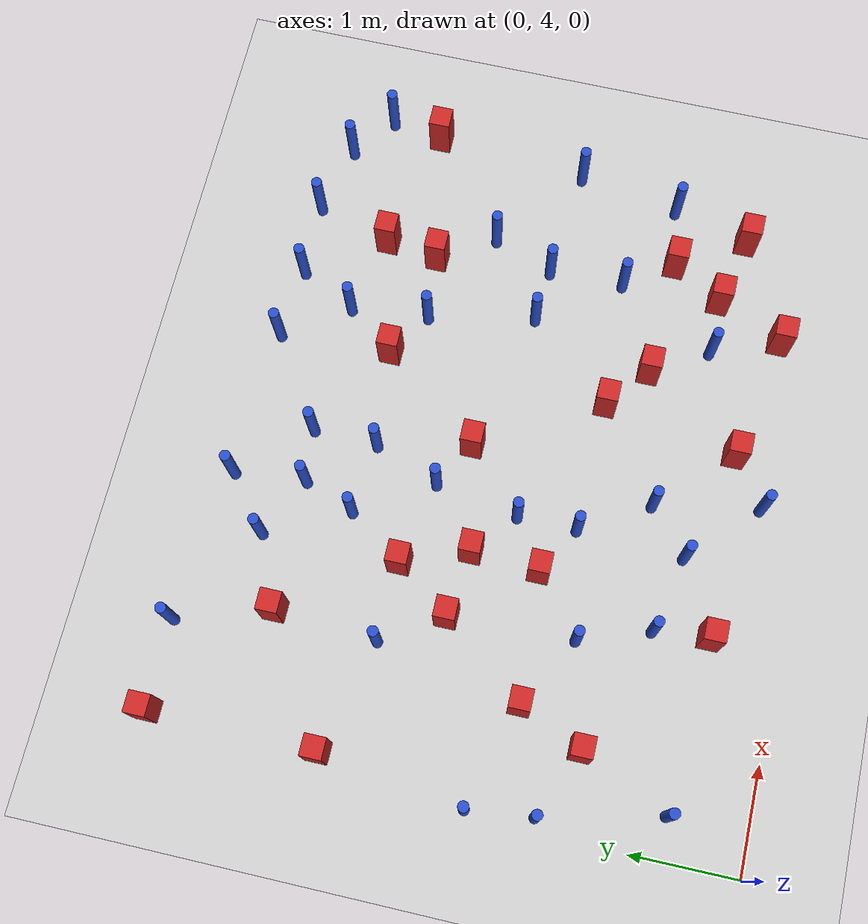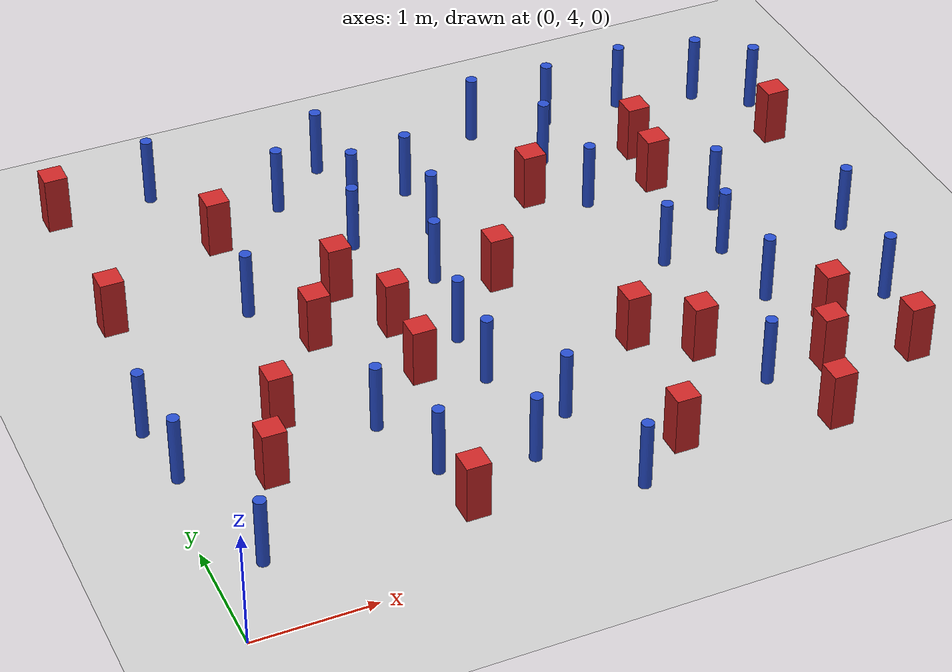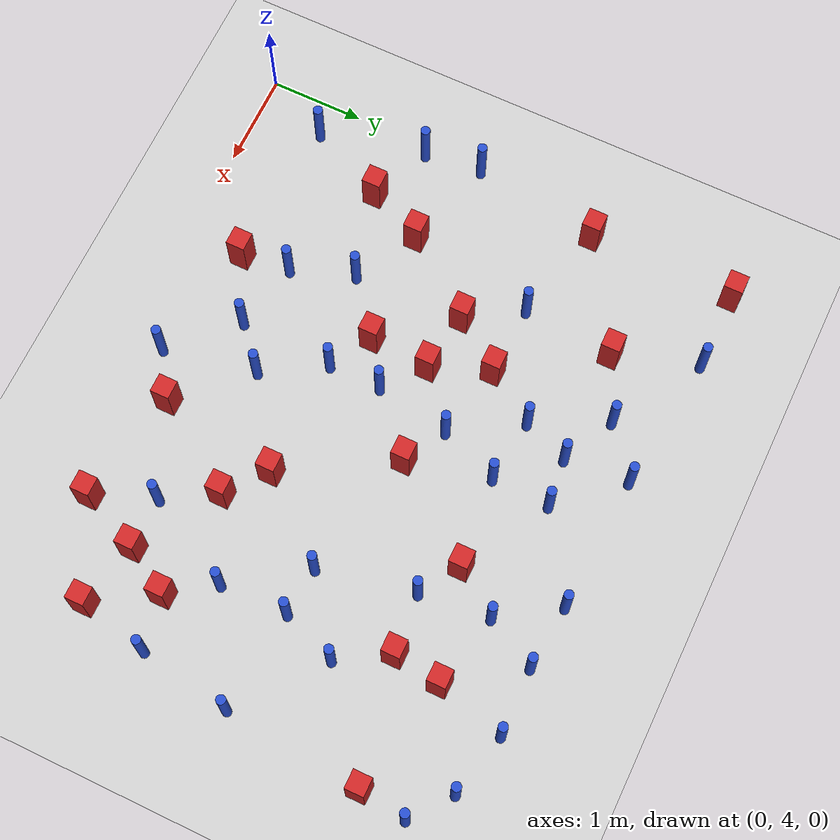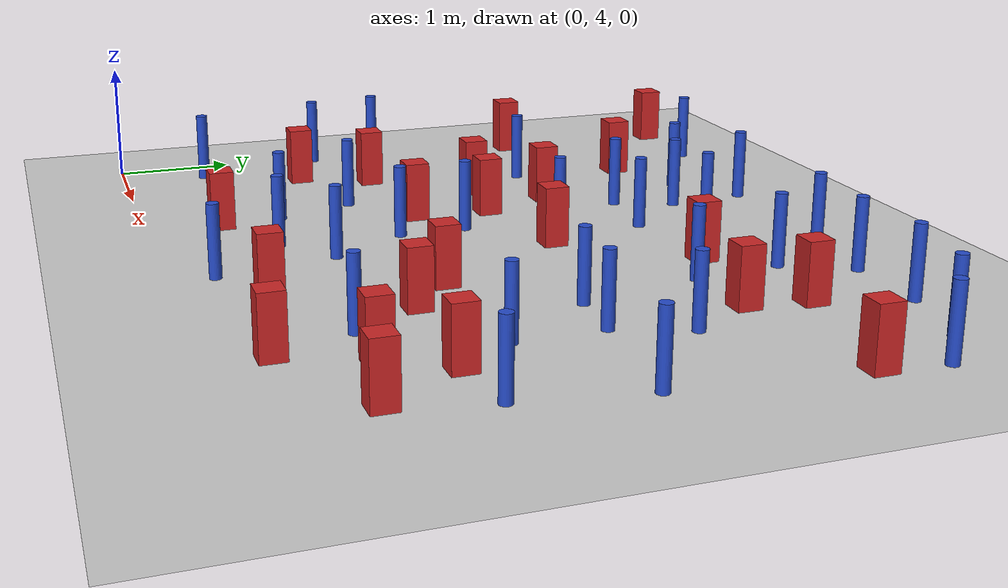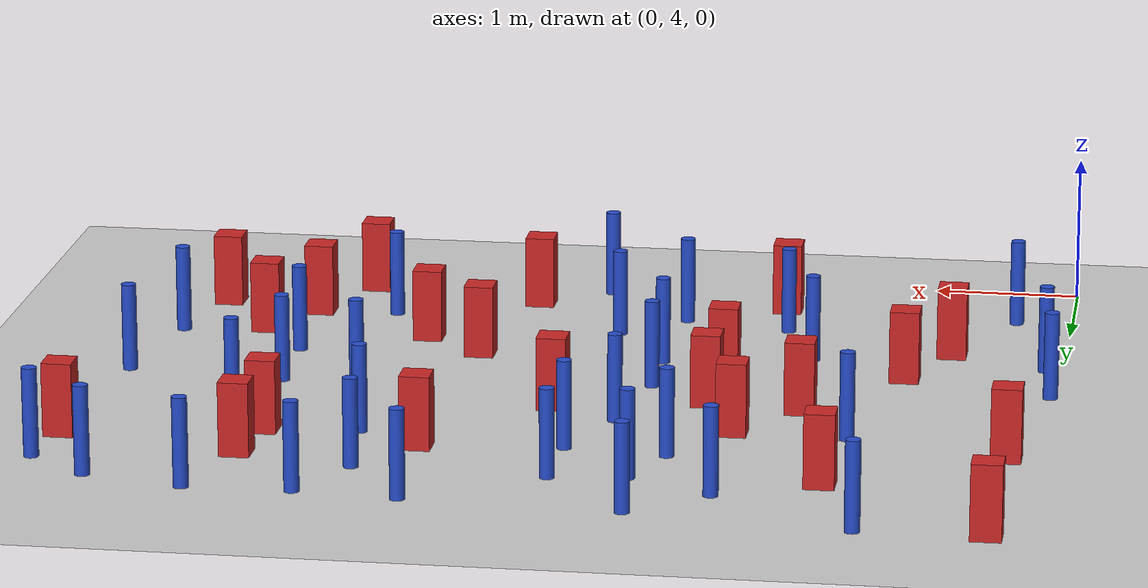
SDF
<sdf version="1.6">
 <world name="default">
  <model name="ground_plane">
   <static>1</static>
   <link name="link">
    <collision name="collision">
     <geometry><plane><normal>0 0 1</normal><size>100 100</size></plane></geometry>
     <surface><friction><ode><mu>100</mu><mu2>50</mu2></ode></friction></surface>
    </collision>
    <visual name="visual">
     <cast_shadows>0</cast_shadows>
     <geometry><plane><normal>0 0 1</normal><size>100 100</size></plane></geometry>
     <material>
      <ambient>1.0 1.0 1.0 1.0</ambient>
      <diffuse>0.8 0.8 0.8 1.0</diffuse>
      <specular>0.01 0.01 0.01 1.000000</specular>
     </material>
    </visual>
   </link>
  </model>
  <model name="square_post_obstacle0">
   <static>true</static>
   <pose>0.259844190821 7.8261904194 1.91545236811e-07 -7.35059704564e-06 1.12565212e-07 2.39332434364e-05</pose>
   <link name="link">
    <pose>0 0 0.25 0 -0 0</pose>
    <inertial>
     <mass>100</mass>
     <inertia>
      <ixx>0.166667</ixx>
      <ixy>0</ixy>
      <ixz>0</ixz>
      <iyy>0.166667</iyy>
      <iyz>0</iyz>
      <izz>0.166667</izz>
     </inertia>
    </inertial>
    <collision name="collision"><geometry><box><size>.2 .2 .5</size></box></geometry></collision>
    <visual name="visual">
     <geometry><box><size>.2 .2 .5</size></box></geometry>
     <material>
      <script><name>Gazebo/Red</name><uri>file://media/materials/scripts/gazebo.material</uri></script>
     </material>
    </visual>
   </link>
  </model>
  <model name="pole_obstacle2">
   <static>true</static>
   <pose>1.31746987575 7.5548257492 7.38925637345e-09 -8.47170692799e-08 1.24976765033e-08 -1.74513093018e-07</pose>
   <link name="link">
    <pose>0 0 0.3 0 -0 0</pose>
    <inertial>
     <mass>1</mass>
     <inertia><ixx>0.145833</ixx><ixy>0</ixy><ixz>0</ixz><iyy>0.145833</iyy><iyz>0</iyz><izz>0.125</izz></inertia>
    </inertial>
    <collision name="collision">
     <geometry><cylinder><radius>0.05</radius><length>.6</length></cylinder></geometry>
    </collision>
    <visual name="visual">
     <geometry><cylinder><radius>0.05</radius><length>.6</length></cylinder></geometry>
     <material>
      <script><name>Gazebo/Blue</name><uri>file://media/materials/scripts/gazebo.material</uri></script>
     </material>
    </visual>
   </link>
  </model>
  <model name="pole_obstacle7">
   <static>true</static>
   <pose>4.00344075744 9.1748586009 7.38925637345e-09 -8.47170692799e-08 1.24976765044e-08 -1.74513093018e-07</pose>
   <link name="link">
    <pose>0 0 0.3 0 -0 0</pose>
    <inertial>
     <mass>1</mass>
     <inertia><ixx>0.145833</ixx><ixy>0</ixy><ixz>0</ixz><iyy>0.145833</iyy><iyz>0</iyz><izz>0.125</izz></inertia>
    </inertial>
    <collision name="collision">
     <geometry><cylinder><radius>0.05</radius><length>.6</length></cylinder></geometry>
    </collision>
    <visual name="visual">
     <geometry><cylinder><radius>0.05</radius><length>.6</length></cylinder></geometry>
     <material>
      <script><name>Gazebo/Blue</name><uri>file://media/materials/scripts/gazebo.material</uri></script>
     </material>
    </visual>
   </link>
  </model>
  <model name="square_post_obstacle23">
   <static>true</static>
   <pose>5.94987685 4.95929267412 1.91545236811e-07 -7.35059704564e-06 1.12565212e-07 2.39332434364e-05</pose>
   <link name="link">
    <pose>0 0 0.25 0 -0 0</pose>
    <inertial>
     <mass>100</mass>
     <inertia>
      <ixx>0.166667</ixx>
      <ixy>0</ixy>
      <ixz>0</ixz>
      <iyy>0.166667</iyy>
      <iyz>0</iyz>
      <izz>0.166667</izz>
     </inertia>
    </inertial>
    <collision name="collision"><geometry><box><size>.2 .2 .5</size></box></geometry></collision>
    <visual name="visual">
     <geometry><box><size>.2 .2 .5</size></box></geometry>
     <material>
      <script><name>Gazebo/Red</name><uri>file://media/materials/scripts/gazebo.material</uri></script>
     </material>
    </visual>
   </link>
  </model>
  <model name="pole_obstacle29">
   <static>true</static>
   <pose>0.0543232831272 6.46250612892 7.38925637345e-09 -8.471706928e-08 1.2497676505e-08 -1.74513093019e-07</pose>
   <link name="link">
    <pose>0 0 0.3 0 -0 0</pose>
    <inertial>
     <mass>1</mass>
     <inertia><ixx>0.145833</ixx><ixy>0</ixy><ixz>0</ixz><iyy>0.145833</iyy><iyz>0</iyz><izz>0.125</izz></inertia>
    </inertial>
    <collision name="collision">
     <geometry><cylinder><radius>0.05</radius><length>.6</length></cylinder></geometry>
    </collision>
    <visual name="visual">
     <geometry><cylinder><radius>0.05</radius><length>.6</length></cylinder></geometry>
     <material>
      <script><name>Gazebo/Blue</name><uri>file://media/materials/scripts/gazebo.material</uri></script>
     </material>
    </visual>
   </link>
  </model>
  <model name="square_post_obstacle36">
   <static>true</static>
   <pose>2.27091739959 6.2632893922 1.91545236811e-07 -7.35059704564e-06 1.12565212e-07 2.39332434364e-05</pose>
   <link name="link">
    <pose>0 0 0.25 0 -0 0</pose>
    <inertial>
     <mass>100</mass>
     <inertia>
      <ixx>0.166667</ixx>
      <ixy>0</ixy>
      <ixz>0</ixz>
      <iyy>0.166667</iyy>
      <iyz>0</iyz>
      <izz>0.166667</izz>
     </inertia>
    </inertial>
    <collision name="collision"><geometry><box><size>.2 .2 .5</size></box></geometry></collision>
    <visual name="visual">
     <geometry><box><size>.2 .2 .5</size></box></geometry>
     <material>
      <script><name>Gazebo/Red</name><uri>file://media/materials/scripts/gazebo.material</uri></script>
     </material>
    </visual>
   </link>
  </model>
  <model name="pole_obstacle39">
   <static>true</static>
   <pose>4.41271274296 8.57441727994 7.38925637345e-09 -8.471706928e-08 1.24976765081e-08 -1.74513093015e-07</pose>
   <link name="link">
    <pose>0 0 0.3 0 -0 0</pose>
    <inertial>
     <mass>1</mass>
     <inertia><ixx>0.145833</ixx><ixy>0</ixy><ixz>0</ixz><iyy>0.145833</iyy><iyz>0</iyz><izz>0.125</izz></inertia>
    </inertial>
    <collision name="collision">
     <geometry><cylinder><radius>0.05</radius><length>.6</length></cylinder></geometry>
    </collision>
    <visual name="visual">
     <geometry><cylinder><radius>0.05</radius><length>.6</length></cylinder></geometry>
     <material>
      <script><name>Gazebo/Blue</name><uri>file://media/materials/scripts/gazebo.material</uri></script>
     </material>
    </visual>
   </link>
  </model>
  <model name="square_post_obstacle41">
   <static>true</static>
   <pose>3.98919099545 5.98354419687 1.91545236811e-07 -7.35059704564e-06 1.12565212e-07 2.39332434364e-05</pose>
   <link name="link">
    <pose>0 0 0.25 0 -0 0</pose>
    <inertial>
     <mass>100</mass>
     <inertia>
      <ixx>0.166667</ixx>
      <ixy>0</ixy>
      <ixz>0</ixz>
      <iyy>0.166667</iyy>
      <iyz>0</iyz>
      <izz>0.166667</izz>
     </inertia>
    </inertial>
    <collision name="collision"><geometry><box><size>.2 .2 .5</size></box></geometry></collision>
    <visual name="visual">
     <geometry><box><size>.2 .2 .5</size></box></geometry>
     <material>
      <script><name>Gazebo/Red</name><uri>file://media/materials/scripts/gazebo.material</uri></script>
     </material>
    </visual>
   </link>
  </model>
  <model name="pole_obstacle47">
   <static>true</static>
   <pose>4.49083674798 7.82996011787 7.38925637345e-09 -8.47170692796e-08 1.24976764786e-08 -1.74513093032e-07</pose>
   <link name="link">
    <pose>0 0 0.3 0 -0 0</pose>
    <inertial>
     <mass>1</mass>
     <inertia><ixx>0.145833</ixx><ixy>0</ixy><ixz>0</ixz><iyy>0.145833</iyy><iyz>0</iyz><izz>0.125</izz></inertia>
    </inertial>
    <collision name="collision">
     <geometry><cylinder><radius>0.05</radius><length>.6</length></cylinder></geometry>
    </collision>
    <visual name="visual">
     <geometry><cylinder><radius>0.05</radius><length>.6</length></cylinder></geometry>
     <material>
      <script><name>Gazebo/Blue</name><uri>file://media/materials/scripts/gazebo.material</uri></script>
     </material>
    </visual>
   </link>
  </model>
  <model name="pole_obstacle50">
   <static>true</static>
   <pose>1.71620191109 5.80942178016 7.38925637345e-09 -8.47170692799e-08 1.24976765033e-08 -1.74513093018e-07</pose>
   <link name="link">
    <pose>0 0 0.3 0 -0 0</pose>
    <inertial>
     <mass>1</mass>
     <inertia><ixx>0.145833</ixx><ixy>0</ixy><ixz>0</ixz><iyy>0.145833</iyy><iyz>0</iyz><izz>0.125</izz></inertia>
    </inertial>
    <collision name="collision">
     <geometry><cylinder><radius>0.05</radius><length>.6</length></cylinder></geometry>
    </collision>
    <visual name="visual">
     <geometry><cylinder><radius>0.05</radius><length>.6</length></cylinder></geometry>
     <material>
      <script><name>Gazebo/Blue</name><uri>file://media/materials/scripts/gazebo.material</uri></script>
     </material>
    </visual>
   </link>
  </model>
  <model name="square_post_obstacle54">
   <static>true</static>
   <pose>1.0529912027 6.17932675304 1.91545236811e-07 -7.35059704564e-06 1.12565212e-07 2.39332434364e-05</pose>
   <link name="link">
    <pose>0 0 0.25 0 -0 0</pose>
    <inertial>
     <mass>100</mass>
     <inertia>
      <ixx>0.166667</ixx>
      <ixy>0</ixy>
      <ixz>0</ixz>
      <iyy>0.166667</iyy>
      <iyz>0</iyz>
      <izz>0.166667</izz>
     </inertia>
    </inertial>
    <collision name="collision"><geometry><box><size>.2 .2 .5</size></box></geometry></collision>
    <visual name="visual">
     <geometry><box><size>.2 .2 .5</size></box></geometry>
     <material>
      <script><name>Gazebo/Red</name><uri>file://media/materials/scripts/gazebo.material</uri></script>
     </material>
    </visual>
   </link>
  </model>
  <model name="square_post_obstacle57">
   <static>true</static>
   <pose>0.776854590454 5.57445574387 1.91545236811e-07 -7.35059704564e-06 1.12565212e-07 2.39332434364e-05</pose>
   <link name="link">
    <pose>0 0 0.25 0 -0 0</pose>
    <inertial>
     <mass>100</mass>
     <inertia>
      <ixx>0.166667</ixx>
      <ixy>0</ixy>
      <ixz>0</ixz>
      <iyy>0.166667</iyy>
      <iyz>0</iyz>
      <izz>0.166667</izz>
     </inertia>
    </inertial>
    <collision name="collision"><geometry><box><size>.2 .2 .5</size></box></geometry></collision>
    <visual name="visual">
     <geometry><box><size>.2 .2 .5</size></box></geometry>
     <material>
      <script><name>Gazebo/Red</name><uri>file://media/materials/scripts/gazebo.material</uri></script>
     </material>
    </visual>
   </link>
  </model>
  <model name="pole_obstacle60">
   <static>true</static>
   <pose>6.29375110418 6.67200276197 7.38925637345e-09 -8.47170692796e-08 1.24976764786e-08 -1.74513093032e-07</pose>
   <link name="link">
    <pose>0 0 0.3 0 -0 0</pose>
    <inertial>
     <mass>1</mass>
     <inertia><ixx>0.145833</ixx><ixy>0</ixy><ixz>0</ixz><iyy>0.145833</iyy><iyz>0</iyz><izz>0.125</izz></inertia>
    </inertial>
    <collision name="collision">
     <geometry><cylinder><radius>0.05</radius><length>.6</length></cylinder></geometry>
    </collision>
    <visual name="visual">
     <geometry><cylinder><radius>0.05</radius><length>.6</length></cylinder></geometry>
     <material>
      <script><name>Gazebo/Blue</name><uri>file://media/materials/scripts/gazebo.material</uri></script>
     </material>
    </visual>
   </link>
  </model>
  <model name="square_post_obstacle72">
   <static>true</static>
   <pose>0.280954935687 9.39479221604 1.91545236811e-07 -7.35059704564e-06 1.12565212e-07 2.39332434364e-05</pose>
   <link name="link">
    <pose>0 0 0.25 0 -0 0</pose>
    <inertial>
     <mass>100</mass>
     <inertia>
      <ixx>0.166667</ixx>
      <ixy>0</ixy>
      <ixz>0</ixz>
      <iyy>0.166667</iyy>
      <iyz>0</iyz>
      <izz>0.166667</izz>
     </inertia>
    </inertial>
    <collision name="collision"><geometry><box><size>.2 .2 .5</size></box></geometry></collision>
    <visual name="visual">
     <geometry><box><size>.2 .2 .5</size></box></geometry>
     <material>
      <script><name>Gazebo/Red</name><uri>file://media/materials/scripts/gazebo.material</uri></script>
     </material>
    </visual>
   </link>
  </model>
  <model name="pole_obstacle71">
   <static>true</static>
   <pose>5.21690695456 6.77594482606 7.38925637345e-09 -8.47170692796e-08 1.24976764786e-08 -1.74513093032e-07</pose>
   <link name="link">
    <pose>0 0 0.3 0 -0 0</pose>
    <inertial>
     <mass>1</mass>
     <inertia><ixx>0.145833</ixx><ixy>0</ixy><ixz>0</ixz><iyy>0.145833</iyy><iyz>0</iyz><izz>0.125</izz></inertia>
    </inertial>
    <collision name="collision">
     <geometry><cylinder><radius>0.05</radius><length>.6</length></cylinder></geometry>
    </collision>
    <visual name="visual">
     <geometry><cylinder><radius>0.05</radius><length>.6</length></cylinder></geometry>
     <material>
      <script><name>Gazebo/Blue</name><uri>file://media/materials/scripts/gazebo.material</uri></script>
     </material>
    </visual>
   </link>
  </model>
  <model name="square_post_obstacle76">
   <static>true</static>
   <pose>1.39670750249 8.52752535508 1.91545236811e-07 -7.35059704564e-06 1.12565212e-07 2.39332434364e-05</pose>
   <link name="link">
    <pose>0 0 0.25 0 -0 0</pose>
    <inertial>
     <mass>100</mass>
     <inertia>
      <ixx>0.166667</ixx>
      <ixy>0</ixy>
      <ixz>0</ixz>
      <iyy>0.166667</iyy>
      <iyz>0</iyz>
      <izz>0.166667</izz>
     </inertia>
    </inertial>
    <collision name="collision"><geometry><box><size>.2 .2 .5</size></box></geometry></collision>
    <visual name="visual">
     <geometry><box><size>.2 .2 .5</size></box></geometry>
     <material>
      <script><name>Gazebo/Red</name><uri>file://media/materials/scripts/gazebo.material</uri></script>
     </material>
    </visual>
   </link>
  </model>
  <model name="pole_obstacle73">
   <static>true</static>
   <pose>3.28883328307 4.37907614086 7.38925637345e-09 -8.47170692798e-08 1.24976765033e-08 -1.74513093019e-07</pose>
   <link name="link">
    <pose>0 0 0.3 0 -0 0</pose>
    <inertial>
     <mass>1</mass>
     <inertia><ixx>0.145833</ixx><ixy>0</ixy><ixz>0</ixz><iyy>0.145833</iyy><iyz>0</iyz><izz>0.125</izz></inertia>
    </inertial>
    <collision name="collision">
     <geometry><cylinder><radius>0.05</radius><length>.6</length></cylinder></geometry>
    </collision>
    <visual name="visual">
     <geometry><cylinder><radius>0.05</radius><length>.6</length></cylinder></geometry>
     <material>
      <script><name>Gazebo/Blue</name><uri>file://media/materials/scripts/gazebo.material</uri></script>
     </material>
    </visual>
   </link>
  </model>
  <model name="pole_obstacle78">
   <static>true</static>
   <pose>1.94879838086 5.15148343264 7.38925637345e-09 -8.47170692799e-08 1.24976765033e-08 -1.74513093018e-07</pose>
   <link name="link">
    <pose>0 0 0.3 0 -0 0</pose>
    <inertial>
     <mass>1</mass>
     <inertia><ixx>0.145833</ixx><ixy>0</ixy><ixz>0</ixz><iyy>0.145833</iyy><iyz>0</iyz><izz>0.125</izz></inertia>
    </inertial>
    <collision name="collision">
     <geometry><cylinder><radius>0.05</radius><length>.6</length></cylinder></geometry>
    </collision>
    <visual name="visual">
     <geometry><cylinder><radius>0.05</radius><length>.6</length></cylinder></geometry>
     <material>
      <script><name>Gazebo/Blue</name><uri>file://media/materials/scripts/gazebo.material</uri></script>
     </material>
    </visual>
   </link>
  </model>
  <model name="square_post_obstacle79">
   <static>true</static>
   <pose>5.26624578994 5.11714486774 1.91545236811e-07 -7.35059704564e-06 1.12565212e-07 2.39332434364e-05</pose>
   <link name="link">
    <pose>0 0 0.25 0 -0 0</pose>
    <inertial>
     <mass>100</mass>
     <inertia>
      <ixx>0.166667</ixx>
      <ixy>0</ixy>
      <ixz>0</ixz>
      <iyy>0.166667</iyy>
      <iyz>0</iyz>
      <izz>0.166667</izz>
     </inertia>
    </inertial>
    <collision name="collision"><geometry><box><size>.2 .2 .5</size></box></geometry></collision>
    <visual name="visual">
     <geometry><box><size>.2 .2 .5</size></box></geometry>
     <material>
      <script><name>Gazebo/Red</name><uri>file://media/materials/scripts/gazebo.material</uri></script>
     </material>
    </visual>
   </link>
  </model>
  <model name="pole_obstacle86">
   <static>true</static>
   <pose>6.08224917032 8.97304101928 7.38925637345e-09 -8.471706928e-08 1.24976765081e-08 -1.74513093015e-07</pose>
   <link name="link">
    <pose>0 0 0.3 0 -0 0</pose>
    <inertial>
     <mass>1</mass>
     <inertia><ixx>0.145833</ixx><ixy>0</ixy><ixz>0</ixz><iyy>0.145833</iyy><iyz>0</iyz><izz>0.125</izz></inertia>
    </inertial>
    <collision name="collision">
     <geometry><cylinder><radius>0.05</radius><length>.6</length></cylinder></geometry>
    </collision>
    <visual name="visual">
     <geometry><cylinder><radius>0.05</radius><length>.6</length></cylinder></geometry>
     <material>
      <script><name>Gazebo/Blue</name><uri>file://media/materials/scripts/gazebo.material</uri></script>
     </material>
    </visual>
   </link>
  </model>
  <model name="pole_obstacle88">
   <static>true</static>
   <pose>3.10351796843 5.36759688696 7.38925637345e-09 -8.47170692798e-08 1.24976765033e-08 -1.74513093019e-07</pose>
   <link name="link">
    <pose>0 0 0.3 0 -0 0</pose>
    <inertial>
     <mass>1</mass>
     <inertia><ixx>0.145833</ixx><ixy>0</ixy><ixz>0</ixz><iyy>0.145833</iyy><iyz>0</iyz><izz>0.125</izz></inertia>
    </inertial>
    <collision name="collision">
     <geometry><cylinder><radius>0.05</radius><length>.6</length></cylinder></geometry>
    </collision>
    <visual name="visual">
     <geometry><cylinder><radius>0.05</radius><length>.6</length></cylinder></geometry>
     <material>
      <script><name>Gazebo/Blue</name><uri>file://media/materials/scripts/gazebo.material</uri></script>
     </material>
    </visual>
   </link>
  </model>
  <model name="pole_obstacle90">
   <static>true</static>
   <pose>5.40414416979 9.13106171104 7.38925637345e-09 -8.471706928e-08 1.24976765081e-08 -1.74513093015e-07</pose>
   <link name="link">
    <pose>0 0 0.3 0 -0 0</pose>
    <inertial>
     <mass>1</mass>
     <inertia><ixx>0.145833</ixx><ixy>0</ixy><ixz>0</ixz><iyy>0.145833</iyy><iyz>0</iyz><izz>0.125</izz></inertia>
    </inertial>
    <collision name="collision">
     <geometry><cylinder><radius>0.05</radius><length>.6</length></cylinder></geometry>
    </collision>
    <visual name="visual">
     <geometry><cylinder><radius>0.05</radius><length>.6</length></cylinder></geometry>
     <material>
      <script><name>Gazebo/Blue</name><uri>file://media/materials/scripts/gazebo.material</uri></script>
     </material>
    </visual>
   </link>
  </model>
  <model name="pole_obstacle95">
   <static>true</static>
   <pose>6.13225508537 5.69359773284 7.38925637345e-09 -8.47170692796e-08 1.24976764786e-08 -1.74513093032e-07</pose>
   <link name="link">
    <pose>0 0 0.3 0 -0 0</pose>
    <inertial>
     <mass>1</mass>
     <inertia><ixx>0.145833</ixx><ixy>0</ixy><ixz>0</ixz><iyy>0.145833</iyy><iyz>0</iyz><izz>0.125</izz></inertia>
    </inertial>
    <collision name="collision">
     <geometry><cylinder><radius>0.05</radius><length>.6</length></cylinder></geometry>
    </collision>
    <visual name="visual">
     <geometry><cylinder><radius>0.05</radius><length>.6</length></cylinder></geometry>
     <material>
      <script><name>Gazebo/Blue</name><uri>file://media/materials/scripts/gazebo.material</uri></script>
     </material>
    </visual>
   </link>
  </model>
  <model name="square_post_obstacle84">
   <static>true</static>
   <pose>4.97425124544 4.47475148719 1.91545236811e-07 -7.35059704564e-06 1.12565212e-07 2.39332434364e-05</pose>
   <link name="link">
    <pose>0 0 0.25 0 -0 0</pose>
    <inertial>
     <mass>100</mass>
     <inertia>
      <ixx>0.166667</ixx>
      <ixy>0</ixy>
      <ixz>0</ixz>
      <iyy>0.166667</iyy>
      <iyz>0</iyz>
      <izz>0.166667</izz>
     </inertia>
    </inertial>
    <collision name="collision"><geometry><box><size>.2 .2 .5</size></box></geometry></collision>
    <visual name="visual">
     <geometry><box><size>.2 .2 .5</size></box></geometry>
     <material>
      <script><name>Gazebo/Red</name><uri>file://media/materials/scripts/gazebo.material</uri></script>
     </material>
    </visual>
   </link>
  </model>
  <model name="pole_obstacle104">
   <static>true</static>
   <pose>0.387293347884 4.73176794335 7.38925637345e-09 -8.471706928e-08 1.24976765079e-08 -1.74513093015e-07</pose>
   <link name="link">
    <pose>0 0 0.3 0 -0 0</pose>
    <inertial>
     <mass>1</mass>
     <inertia><ixx>0.145833</ixx><ixy>0</ixy><ixz>0</ixz><iyy>0.145833</iyy><iyz>0</iyz><izz>0.125</izz></inertia>
    </inertial>
    <collision name="collision">
     <geometry><cylinder><radius>0.05</radius><length>.6</length></cylinder></geometry>
    </collision>
    <visual name="visual">
     <geometry><cylinder><radius>0.05</radius><length>.6</length></cylinder></geometry>
     <material>
      <script><name>Gazebo/Blue</name><uri>file://media/materials/scripts/gazebo.material</uri></script>
     </material>
    </visual>
   </link>
  </model>
  <model name="pole_obstacle108">
   <static>true</static>
   <pose>2.05862997516 8.83184196489 7.38925637345e-09 -8.47170692793e-08 1.24976764408e-08 -1.74513093041e-07</pose>
   <link name="link">
    <pose>0 0 0.3 0 -0 0</pose>
    <inertial>
     <mass>1</mass>
     <inertia><ixx>0.145833</ixx><ixy>0</ixy><ixz>0</ixz><iyy>0.145833</iyy><iyz>0</iyz><izz>0.125</izz></inertia>
    </inertial>
    <collision name="collision">
     <geometry><cylinder><radius>0.05</radius><length>.6</length></cylinder></geometry>
    </collision>
    <visual name="visual">
     <geometry><cylinder><radius>0.05</radius><length>.6</length></cylinder></geometry>
     <material>
      <script><name>Gazebo/Blue</name><uri>file://media/materials/scripts/gazebo.material</uri></script>
     </material>
    </visual>
   </link>
  </model>
  <model name="pole_obstacle110">
   <static>true</static>
   <pose>2.72618304819 6.56641619871 7.38925637345e-09 -8.47170692798e-08 1.24976765033e-08 -1.74513093019e-07</pose>
   <link name="link">
    <pose>0 0 0.3 0 -0 0</pose>
    <inertial>
     <mass>1</mass>
     <inertia><ixx>0.145833</ixx><ixy>0</ixy><ixz>0</ixz><iyy>0.145833</iyy><iyz>0</iyz><izz>0.125</izz></inertia>
    </inertial>
    <collision name="collision">
     <geometry><cylinder><radius>0.05</radius><length>.6</length></cylinder></geometry>
    </collision>
    <visual name="visual">
     <geometry><cylinder><radius>0.05</radius><length>.6</length></cylinder></geometry>
     <material>
      <script><name>Gazebo/Blue</name><uri>file://media/materials/scripts/gazebo.material</uri></script>
     </material>
    </visual>
   </link>
  </model>
  <model name="pole_obstacle111">
   <static>true</static>
   <pose>5.44063454607 7.36086029957 7.38925637345e-09 -8.47170692796e-08 1.24976764786e-08 -1.74513093032e-07</pose>
   <link name="link">
    <pose>0 0 0.3 0 -0 0</pose>
    <inertial>
     <mass>1</mass>
     <inertia><ixx>0.145833</ixx><ixy>0</ixy><ixz>0</ixz><iyy>0.145833</iyy><iyz>0</iyz><izz>0.125</izz></inertia>
    </inertial>
    <collision name="collision">
     <geometry><cylinder><radius>0.05</radius><length>.6</length></cylinder></geometry>
    </collision>
    <visual name="visual">
     <geometry><cylinder><radius>0.05</radius><length>.6</length></cylinder></geometry>
     <material>
      <script><name>Gazebo/Blue</name><uri>file://media/materials/scripts/gazebo.material</uri></script>
     </material>
    </visual>
   </link>
  </model>
  <model name="square_post_obstacle100">
   <static>true</static>
   <pose>4.40349483698 5.6456814371 1.91545236811e-07 -7.35059704564e-06 1.12565212e-07 2.39332434364e-05</pose>
   <link name="link">
    <pose>0 0 0.25 0 -0 0</pose>
    <inertial>
     <mass>100</mass>
     <inertia>
      <ixx>0.166667</ixx>
      <ixy>0</ixy>
      <ixz>0</ixz>
      <iyy>0.166667</iyy>
      <iyz>0</iyz>
      <izz>0.166667</izz>
     </inertia>
    </inertial>
    <collision name="collision"><geometry><box><size>.2 .2 .5</size></box></geometry></collision>
    <visual name="visual">
     <geometry><box><size>.2 .2 .5</size></box></geometry>
     <material>
      <script><name>Gazebo/Red</name><uri>file://media/materials/scripts/gazebo.material</uri></script>
     </material>
    </visual>
   </link>
  </model>
  <model name="pole_obstacle114">
   <static>true</static>
   <pose>2.43563593085 8.06707056105 7.38925637345e-09 -8.47170692793e-08 1.24976764408e-08 -1.74513093041e-07</pose>
   <link name="link">
    <pose>0 0 0.3 0 -0 0</pose>
    <inertial>
     <mass>1</mass>
     <inertia><ixx>0.145833</ixx><ixy>0</ixy><ixz>0</ixz><iyy>0.145833</iyy><iyz>0</iyz><izz>0.125</izz></inertia>
    </inertial>
    <collision name="collision">
     <geometry><cylinder><radius>0.05</radius><length>.6</length></cylinder></geometry>
    </collision>
    <visual name="visual">
     <geometry><cylinder><radius>0.05</radius><length>.6</length></cylinder></geometry>
     <material>
      <script><name>Gazebo/Blue</name><uri>file://media/materials/scripts/gazebo.material</uri></script>
     </material>
    </visual>
   </link>
  </model>
  <model name="pole_obstacle115">
   <static>true</static>
   <pose>5.2358846636 6.05901924499 7.38925637345e-09 -8.47170692796e-08 1.24976764786e-08 -1.74513093032e-07</pose>
   <link name="link">
    <pose>0 0 0.3 0 -0 0</pose>
    <inertial>
     <mass>1</mass>
     <inertia><ixx>0.145833</ixx><ixy>0</ixy><ixz>0</ixz><iyy>0.145833</iyy><iyz>0</iyz><izz>0.125</izz></inertia>
    </inertial>
    <collision name="collision">
     <geometry><cylinder><radius>0.05</radius><length>.6</length></cylinder></geometry>
    </collision>
    <visual name="visual">
     <geometry><cylinder><radius>0.05</radius><length>.6</length></cylinder></geometry>
     <material>
      <script><name>Gazebo/Blue</name><uri>file://media/materials/scripts/gazebo.material</uri></script>
     </material>
    </visual>
   </link>
  </model>
  <model name="pole_obstacle117">
   <static>true</static>
   <pose>2.56803387741 9.23745211428 7.38925637345e-09 -8.47170692793e-08 1.24976764408e-08 -1.74513093041e-07</pose>
   <link name="link">
    <pose>0 0 0.3 0 -0 0</pose>
    <inertial>
     <mass>1</mass>
     <inertia><ixx>0.145833</ixx><ixy>0</ixy><ixz>0</ixz><iyy>0.145833</iyy><iyz>0</iyz><izz>0.125</izz></inertia>
    </inertial>
    <collision name="collision">
     <geometry><cylinder><radius>0.05</radius><length>.6</length></cylinder></geometry>
    </collision>
    <visual name="visual">
     <geometry><cylinder><radius>0.05</radius><length>.6</length></cylinder></geometry>
     <material>
      <script><name>Gazebo/Blue</name><uri>file://media/materials/scripts/gazebo.material</uri></script>
     </material>
    </visual>
   </link>
  </model>
  <model name="square_post_obstacle115">
   <static>true</static>
   <pose>2.07228698669 7.52504406756 1.91545236811e-07 -7.35059704564e-06 1.12565212e-07 2.39332434364e-05</pose>
   <link name="link">
    <pose>0 0 0.25 0 -0 0</pose>
    <inertial>
     <mass>100</mass>
     <inertia>
      <ixx>0.166667</ixx>
      <ixy>0</ixy>
      <ixz>0</ixz>
      <iyy>0.166667</iyy>
      <iyz>0</iyz>
      <izz>0.166667</izz>
     </inertia>
    </inertial>
    <collision name="collision"><geometry><box><size>.2 .2 .5</size></box></geometry></collision>
    <visual name="visual">
     <geometry><box><size>.2 .2 .5</size></box></geometry>
     <material>
      <script><name>Gazebo/Red</name><uri>file://media/materials/scripts/gazebo.material</uri></script>
     </material>
    </visual>
   </link>
  </model>
  <model name="square_post_obstacle119">
   <static>true</static>
   <pose>3.75746490038 4.70434600494 1.91545236811e-07 -7.35059704564e-06 1.12565212e-07 2.39332434364e-05</pose>
   <link name="link">
    <pose>0 0 0.25 0 -0 0</pose>
    <inertial>
     <mass>100</mass>
     <inertia>
      <ixx>0.166667</ixx>
      <ixy>0</ixy>
      <ixz>0</ixz>
      <iyy>0.166667</iyy>
      <iyz>0</iyz>
      <izz>0.166667</izz>
     </inertia>
    </inertial>
    <collision name="collision"><geometry><box><size>.2 .2 .5</size></box></geometry></collision>
    <visual name="visual">
     <geometry><box><size>.2 .2 .5</size></box></geometry>
     <material>
      <script><name>Gazebo/Red</name><uri>file://media/materials/scripts/gazebo.material</uri></script>
     </material>
    </visual>
   </link>
  </model>
  <model name="square_post_obstacle124">
   <static>true</static>
   <pose>4.06674657661 8.09583792169 1.91545236811e-07 -7.35059704564e-06 1.12565212e-07 2.39332434364e-05</pose>
   <link name="link">
    <pose>0 0 0.25 0 -0 0</pose>
    <inertial>
     <mass>100</mass>
     <inertia>
      <ixx>0.166667</ixx>
      <ixy>0</ixy>
      <ixz>0</ixz>
      <iyy>0.166667</iyy>
      <iyz>0</iyz>
      <izz>0.166667</izz>
     </inertia>
    </inertial>
    <collision name="collision"><geometry><box><size>.2 .2 .5</size></box></geometry></collision>
    <visual name="visual">
     <geometry><box><size>.2 .2 .5</size></box></geometry>
     <material>
      <script><name>Gazebo/Red</name><uri>file://media/materials/scripts/gazebo.material</uri></script>
     </material>
    </visual>
   </link>
  </model>
  <model name="pole_obstacle140">
   <static>true</static>
   <pose>3.11429593923 7.99545612096 7.38925637345e-09 -8.47170692799e-08 1.24976765031e-08 -1.7451309302e-07</pose>
   <link name="link">
    <pose>0 0 0.3 0 -0 0</pose>
    <inertial>
     <mass>1</mass>
     <inertia><ixx>0.145833</ixx><ixy>0</ixy><ixz>0</ixz><iyy>0.145833</iyy><iyz>0</iyz><izz>0.125</izz></inertia>
    </inertial>
    <collision name="collision">
     <geometry><cylinder><radius>0.05</radius><length>.6</length></cylinder></geometry>
    </collision>
    <visual name="visual">
     <geometry><cylinder><radius>0.05</radius><length>.6</length></cylinder></geometry>
     <material>
      <script><name>Gazebo/Blue</name><uri>file://media/materials/scripts/gazebo.material</uri></script>
     </material>
    </visual>
   </link>
  </model>
  <model name="square_post_obstacle127">
   <static>true</static>
   <pose>5.19724345872 8.39582983809 1.91545236811e-07 -7.35059704564e-06 1.12565212e-07 2.39332434364e-05</pose>
   <link name="link">
    <pose>0 0 0.25 0 -0 0</pose>
    <inertial>
     <mass>100</mass>
     <inertia>
      <ixx>0.166667</ixx>
      <ixy>0</ixy>
      <ixz>0</ixz>
      <iyy>0.166667</iyy>
      <iyz>0</iyz>
      <izz>0.166667</izz>
     </inertia>
    </inertial>
    <collision name="collision"><geometry><box><size>.2 .2 .5</size></box></geometry></collision>
    <visual name="visual">
     <geometry><box><size>.2 .2 .5</size></box></geometry>
     <material>
      <script><name>Gazebo/Red</name><uri>file://media/materials/scripts/gazebo.material</uri></script>
     </material>
    </visual>
   </link>
  </model>
  <model name="square_post_obstacle131">
   <static>true</static>
   <pose>3.31894612895 7.12227841822 1.91545236811e-07 -7.35059704564e-06 1.12565212e-07 2.39332434364e-05</pose>
   <link name="link">
    <pose>0 0 0.25 0 -0 0</pose>
    <inertial>
     <mass>100</mass>
     <inertia>
      <ixx>0.166667</ixx>
      <ixy>0</ixy>
      <ixz>0</ixz>
      <iyy>0.166667</iyy>
      <iyz>0</iyz>
      <izz>0.166667</izz>
     </inertia>
    </inertial>
    <collision name="collision"><geometry><box><size>.2 .2 .5</size></box></geometry></collision>
    <visual name="visual">
     <geometry><box><size>.2 .2 .5</size></box></geometry>
     <material>
      <script><name>Gazebo/Red</name><uri>file://media/materials/scripts/gazebo.material</uri></script>
     </material>
    </visual>
   </link>
  </model>
  <model name="pole_obstacle143">
   <static>true</static>
   <pose>1.11067063677 9.40567316101 7.38925637345e-09 -8.47170692798e-08 1.24976764881e-08 -1.74513093027e-07</pose>
   <link name="link">
    <pose>0 0 0.3 0 -0 0</pose>
    <inertial>
     <mass>1</mass>
     <inertia><ixx>0.145833</ixx><ixy>0</ixy><ixz>0</ixz><iyy>0.145833</iyy><iyz>0</iyz><izz>0.125</izz></inertia>
    </inertial>
    <collision name="collision">
     <geometry><cylinder><radius>0.05</radius><length>.6</length></cylinder></geometry>
    </collision>
    <visual name="visual">
     <geometry><cylinder><radius>0.05</radius><length>.6</length></cylinder></geometry>
     <material>
      <script><name>Gazebo/Blue</name><uri>file://media/materials/scripts/gazebo.material</uri></script>
     </material>
    </visual>
   </link>
  </model>
  <model name="pole_obstacle146">
   <static>true</static>
   <pose>4.70047268076 6.81453368981 7.38925637345e-09 -8.47170692796e-08 1.24976764786e-08 -1.74513093032e-07</pose>
   <link name="link">
    <pose>0 0 0.3 0 -0 0</pose>
    <inertial>
     <mass>1</mass>
     <inertia><ixx>0.145833</ixx><ixy>0</ixy><ixz>0</ixz><iyy>0.145833</iyy><iyz>0</iyz><izz>0.125</izz></inertia>
    </inertial>
    <collision name="collision">
     <geometry><cylinder><radius>0.05</radius><length>.6</length></cylinder></geometry>
    </collision>
    <visual name="visual">
     <geometry><cylinder><radius>0.05</radius><length>.6</length></cylinder></geometry>
     <material>
      <script><name>Gazebo/Blue</name><uri>file://media/materials/scripts/gazebo.material</uri></script>
     </material>
    </visual>
   </link>
  </model>
  <model name="square_post_obstacle137">
   <static>true</static>
   <pose>1.67919476429 6.99310978837 1.91545236811e-07 -7.35059704564e-06 1.12565212e-07 2.39332434364e-05</pose>
   <link name="link">
    <pose>0 0 0.25 0 -0 0</pose>
    <inertial>
     <mass>100</mass>
     <inertia>
      <ixx>0.166667</ixx>
      <ixy>0</ixy>
      <ixz>0</ixz>
      <iyy>0.166667</iyy>
      <iyz>0</iyz>
      <izz>0.166667</izz>
     </inertia>
    </inertial>
    <collision name="collision"><geometry><box><size>.2 .2 .5</size></box></geometry></collision>
    <visual name="visual">
     <geometry><box><size>.2 .2 .5</size></box></geometry>
     <material>
      <script><name>Gazebo/Red</name><uri>file://media/materials/scripts/gazebo.material</uri></script>
     </material>
    </visual>
   </link>
  </model>
  <model name="pole_obstacle153">
   <static>true</static>
   <pose>4.72515393733 5.10607505975 7.38925637345e-09 -8.47170692796e-08 1.24976764786e-08 -1.74513093032e-07</pose>
   <link name="link">
    <pose>0 0 0.3 0 -0 0</pose>
    <inertial>
     <mass>1</mass>
     <inertia><ixx>0.145833</ixx><ixy>0</ixy><ixz>0</ixz><iyy>0.145833</iyy><iyz>0</iyz><izz>0.125</izz></inertia>
    </inertial>
    <collision name="collision">
     <geometry><cylinder><radius>0.05</radius><length>.6</length></cylinder></geometry>
    </collision>
    <visual name="visual">
     <geometry><cylinder><radius>0.05</radius><length>.6</length></cylinder></geometry>
     <material>
      <script><name>Gazebo/Blue</name><uri>file://media/materials/scripts/gazebo.material</uri></script>
     </material>
    </visual>
   </link>
  </model>
  <model name="pole_obstacle154">
   <static>true</static>
   <pose>2.62677428118 8.55635124038 7.38925637345e-09 -8.47170692793e-08 1.24976764408e-08 -1.74513093041e-07</pose>
   <link name="link">
    <pose>0 0 0.3 0 -0 0</pose>
    <inertial>
     <mass>1</mass>
     <inertia><ixx>0.145833</ixx><ixy>0</ixy><ixz>0</ixz><iyy>0.145833</iyy><iyz>0</iyz><izz>0.125</izz></inertia>
    </inertial>
    <collision name="collision">
     <geometry><cylinder><radius>0.05</radius><length>.6</length></cylinder></geometry>
    </collision>
    <visual name="visual">
     <geometry><cylinder><radius>0.05</radius><length>.6</length></cylinder></geometry>
     <material>
      <script><name>Gazebo/Blue</name><uri>file://media/materials/scripts/gazebo.material</uri></script>
     </material>
    </visual>
   </link>
  </model>
  <model name="square_post_obstacle148">
   <static>true</static>
   <pose>5.55505774008 5.60000102712 1.91545236811e-07 -7.35059704564e-06 1.12565212e-07 2.39332434364e-05</pose>
   <link name="link">
    <pose>0 0 0.25 0 -0 0</pose>
    <inertial>
     <mass>100</mass>
     <inertia>
      <ixx>0.166667</ixx>
      <ixy>0</ixy>
      <ixz>0</ixz>
      <iyy>0.166667</iyy>
      <iyz>0</iyz>
      <izz>0.166667</izz>
     </inertia>
    </inertial>
    <collision name="collision"><geometry><box><size>.2 .2 .5</size></box></geometry></collision>
    <visual name="visual">
     <geometry><box><size>.2 .2 .5</size></box></geometry>
     <material>
      <script><name>Gazebo/Red</name><uri>file://media/materials/scripts/gazebo.material</uri></script>
     </material>
    </visual>
   </link>
  </model>
  <model name="pole_obstacle158">
   <static>true</static>
   <pose>4.69268888759 9.11526751552 7.38925637345e-09 -8.471706928e-08 1.24976765081e-08 -1.74513093015e-07</pose>
   <link name="link">
    <pose>0 0 0.3 0 -0 0</pose>
    <inertial>
     <mass>1</mass>
     <inertia><ixx>0.145833</ixx><ixy>0</ixy><ixz>0</ixz><iyy>0.145833</iyy><iyz>0</iyz><izz>0.125</izz></inertia>
    </inertial>
    <collision name="collision">
     <geometry><cylinder><radius>0.05</radius><length>.6</length></cylinder></geometry>
    </collision>
    <visual name="visual">
     <geometry><cylinder><radius>0.05</radius><length>.6</length></cylinder></geometry>
     <material>
      <script><name>Gazebo/Blue</name><uri>file://media/materials/scripts/gazebo.material</uri></script>
     </material>
    </visual>
   </link>
  </model>
  <model name="pole_obstacle159">
   <static>true</static>
   <pose>2.86897423038 7.36580393672 7.38925637345e-09 -8.47170692798e-08 1.24976765033e-08 -1.74513093019e-07</pose>
   <link name="link">
    <pose>0 0 0.3 0 -0 0</pose>
    <inertial>
     <mass>1</mass>
     <inertia><ixx>0.145833</ixx><ixy>0</ixy><ixz>0</ixz><iyy>0.145833</iyy><iyz>0</iyz><izz>0.125</izz></inertia>
    </inertial>
    <collision name="collision">
     <geometry><cylinder><radius>0.05</radius><length>.6</length></cylinder></geometry>
    </collision>
    <visual name="visual">
     <geometry><cylinder><radius>0.05</radius><length>.6</length></cylinder></geometry>
     <material>
      <script><name>Gazebo/Blue</name><uri>file://media/materials/scripts/gazebo.material</uri></script>
     </material>
    </visual>
   </link>
  </model>
  <model name="pole_obstacle166">
   <static>true</static>
   <pose>0.12451743289 5.84658765658 7.38925637345e-09 -8.47170692799e-08 1.2497676504e-08 -1.74513093019e-07</pose>
   <link name="link">
    <pose>0 0 0.3 0 -0 0</pose>
    <inertial>
     <mass>1</mass>
     <inertia><ixx>0.145833</ixx><ixy>0</ixy><ixz>0</ixz><iyy>0.145833</iyy><iyz>0</iyz><izz>0.125</izz></inertia>
    </inertial>
    <collision name="collision">
     <geometry><cylinder><radius>0.05</radius><length>.6</length></cylinder></geometry>
    </collision>
    <visual name="visual">
     <geometry><cylinder><radius>0.05</radius><length>.6</length></cylinder></geometry>
     <material>
      <script><name>Gazebo/Blue</name><uri>file://media/materials/scripts/gazebo.material</uri></script>
     </material>
    </visual>
   </link>
  </model>
  <model name="square_post_obstacle164">
   <static>true</static>
   <pose>5.12363786976 7.88654132217 1.91545236811e-07 -7.35059704564e-06 1.12565212e-07 2.39332434364e-05</pose>
   <link name="link">
    <pose>0 0 0.25 0 -0 0</pose>
    <inertial>
     <mass>100</mass>
     <inertia>
      <ixx>0.166667</ixx>
      <ixy>0</ixy>
      <ixz>0</ixz>
      <iyy>0.166667</iyy>
      <iyz>0</iyz>
      <izz>0.166667</izz>
     </inertia>
    </inertial>
    <collision name="collision"><geometry><box><size>.2 .2 .5</size></box></geometry></collision>
    <visual name="visual">
     <geometry><box><size>.2 .2 .5</size></box></geometry>
     <material>
      <script><name>Gazebo/Red</name><uri>file://media/materials/scripts/gazebo.material</uri></script>
     </material>
    </visual>
   </link>
  </model>
  <model name="pole_obstacle187">
   <static>true</static>
   <pose>3.13494430799 8.61416158663 7.38925637345e-09 -8.47170692793e-08 1.24976764408e-08 -1.74513093041e-07</pose>
   <link name="link">
    <pose>0 0 0.3 0 -0 0</pose>
    <inertial>
     <mass>1</mass>
     <inertia><ixx>0.145833</ixx><ixy>0</ixy><ixz>0</ixz><iyy>0.145833</iyy><iyz>0</iyz><izz>0.125</izz></inertia>
    </inertial>
    <collision name="collision">
     <geometry><cylinder><radius>0.05</radius><length>.6</length></cylinder></geometry>
    </collision>
    <visual name="visual">
     <geometry><cylinder><radius>0.05</radius><length>.6</length></cylinder></geometry>
     <material>
      <script><name>Gazebo/Blue</name><uri>file://media/materials/scripts/gazebo.material</uri></script>
     </material>
    </visual>
   </link>
  </model>
  <model name="square_post_obstacle194">
   <static>true</static>
   <pose>6.42145140878 8.14404928655 1.91545236811e-07 -7.35059704564e-06 1.12565212e-07 2.39332434364e-05</pose>
   <link name="link">
    <pose>0 0 0.25 0 -0 0</pose>
    <inertial>
     <mass>100</mass>
     <inertia>
      <ixx>0.166667</ixx>
      <ixy>0</ixy>
      <ixz>0</ixz>
      <iyy>0.166667</iyy>
      <iyz>0</iyz>
      <izz>0.166667</izz>
     </inertia>
    </inertial>
    <collision name="collision"><geometry><box><size>.2 .2 .5</size></box></geometry></collision>
    <visual name="visual">
     <geometry><box><size>.2 .2 .5</size></box></geometry>
     <material>
      <script><name>Gazebo/Red</name><uri>file://media/materials/scripts/gazebo.material</uri></script>
     </material>
    </visual>
   </link>
  </model>
  <model name="square_post_obstacle196">
   <static>true</static>
   <pose>2.31397275031 6.90932197642 1.91545236811e-07 -7.35059704564e-06 1.12565212e-07 2.39332434364e-05</pose>
   <link name="link">
    <pose>0 0 0.25 0 -0 0</pose>
    <inertial>
     <mass>100</mass>
     <inertia>
      <ixx>0.166667</ixx>
      <ixy>0</ixy>
      <ixz>0</ixz>
      <iyy>0.166667</iyy>
      <iyz>0</iyz>
      <izz>0.166667</izz>
     </inertia>
    </inertial>
    <collision name="collision"><geometry><box><size>.2 .2 .5</size></box></geometry></collision>
    <visual name="visual">
     <geometry><box><size>.2 .2 .5</size></box></geometry>
     <material>
      <script><name>Gazebo/Red</name><uri>file://media/materials/scripts/gazebo.material</uri></script>
     </material>
    </visual>
   </link>
  </model>
  <model name="square_post_obstacle204">
   <static>true</static>
   <pose>2.00574861654 4.63666350151 1.91545236811e-07 -7.35059704564e-06 1.12565212e-07 2.39332434364e-05</pose>
   <link name="link">
    <pose>0 0 0.25 0 -0 0</pose>
    <inertial>
     <mass>100</mass>
     <inertia>
      <ixx>0.166667</ixx>
      <ixy>0</ixy>
      <ixz>0</ixz>
      <iyy>0.166667</iyy>
      <iyz>0</iyz>
      <izz>0.166667</izz>
     </inertia>
    </inertial>
    <collision name="collision"><geometry><box><size>.2 .2 .5</size></box></geometry></collision>
    <visual name="visual">
     <geometry><box><size>.2 .2 .5</size></box></geometry>
     <material>
      <script><name>Gazebo/Red</name><uri>file://media/materials/scripts/gazebo.material</uri></script>
     </material>
    </visual>
   </link>
  </model>
  <model name="pole_obstacle205">
   <static>true</static>
   <pose>6.4955549211 8.65130598302 7.38925637345e-09 -8.471706928e-08 1.24976765081e-08 -1.74513093015e-07</pose>
   <link name="link">
    <pose>0 0 0.3 0 -0 0</pose>
    <inertial>
     <mass>1</mass>
     <inertia><ixx>0.145833</ixx><ixy>0</ixy><ixz>0</ixz><iyy>0.145833</iyy><iyz>0</iyz><izz>0.125</izz></inertia>
    </inertial>
    <collision name="collision">
     <geometry><cylinder><radius>0.05</radius><length>.6</length></cylinder></geometry>
    </collision>
    <visual name="visual">
     <geometry><cylinder><radius>0.05</radius><length>.6</length></cylinder></geometry>
     <material>
      <script><name>Gazebo/Blue</name><uri>file://media/materials/scripts/gazebo.material</uri></script>
     </material>
    </visual>
   </link>
  </model>
  <model name="pole_obstacle207">
   <static>true</static>
   <pose>2.67705123922 4.99291541977 7.38925637345e-09 -8.47170692798e-08 1.24976765033e-08 -1.74513093019e-07</pose>
   <link name="link">
    <pose>0 0 0.3 0 -0 0</pose>
    <inertial>
     <mass>1</mass>
     <inertia><ixx>0.145833</ixx><ixy>0</ixy><ixz>0</ixz><iyy>0.145833</iyy><iyz>0</iyz><izz>0.125</izz></inertia>
    </inertial>
    <collision name="collision">
     <geometry><cylinder><radius>0.05</radius><length>.6</length></cylinder></geometry>
    </collision>
    <visual name="visual">
     <geometry><cylinder><radius>0.05</radius><length>.6</length></cylinder></geometry>
     <material>
      <script><name>Gazebo/Blue</name><uri>file://media/materials/scripts/gazebo.material</uri></script>
     </material>
    </visual>
   </link>
  </model>
  <model name="pole_obstacle216">
   <static>true</static>
   <pose>2.72383000957 6.00352002078 7.38925637345e-09 -8.47170692794e-08 1.24976764468e-08 -1.7451309304e-07</pose>
   <link name="link">
    <pose>0 0 0.3 0 -0 0</pose>
    <inertial>
     <mass>1</mass>
     <inertia><ixx>0.145833</ixx><ixy>0</ixy><ixz>0</ixz><iyy>0.145833</iyy><iyz>0</iyz><izz>0.125</izz></inertia>
    </inertial>
    <collision name="collision">
     <geometry><cylinder><radius>0.05</radius><length>.6</length></cylinder></geometry>
    </collision>
    <visual name="visual">
     <geometry><cylinder><radius>0.05</radius><length>.6</length></cylinder></geometry>
     <material>
      <script><name>Gazebo/Blue</name><uri>file://media/materials/scripts/gazebo.material</uri></script>
     </material>
    </visual>
   </link>
  </model>
 </world>
</sdf>
